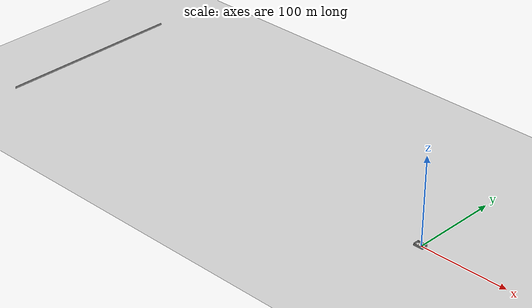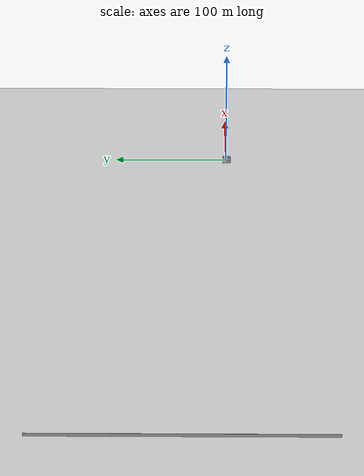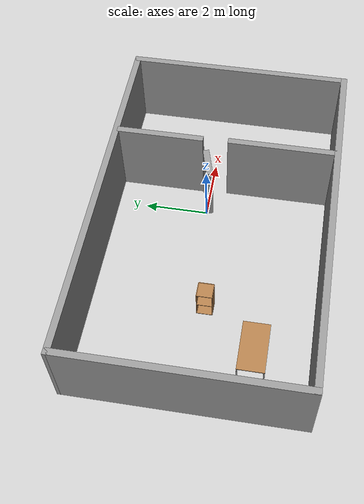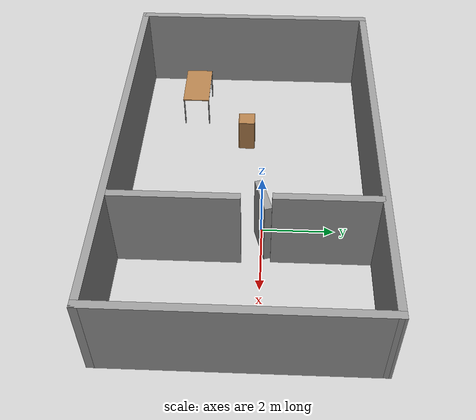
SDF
<sdf version="1.4">
 <world name="default">
  <light name="sun" type="directional">
   <pose>0 0 10 0 -0 0</pose>
   <diffuse>0.8 0.8 0.8 1</diffuse>
   <specular>0.2 0.2 0.2 1</specular>
   <attenuation>
    <range>1000</range>
    <constant>0.9</constant>
    <linear>0.01</linear>
    <quadratic>0.001</quadratic>
   </attenuation>
   <direction>-0.5 0.1 -0.9</direction>
  </light>
  <model name="ground_plane">
   <static>1</static>
   <link name="link">
    <collision name="collision">
     <geometry><plane><normal>0 0 1</normal><size>100 100</size></plane></geometry>
     <surface><friction><ode><mu>100</mu><mu2>50</mu2></ode></friction></surface>
    </collision>
    <visual name="visual">
     <cast_shadows>0</cast_shadows>
     <geometry><plane><normal>0 0 1</normal><size>100 100</size></plane></geometry>
     <material>
      <script><uri>file://media/materials/scripts/gazebo.material</uri><name>Gazebo/Grey</name></script>
     </material>
    </visual>
    <velocity_decay><linear>0</linear><angular>0</angular></velocity_decay>
   </link>
  </model>
  <physics type="ode">
   <max_step_size>0.001</max_step_size>
   <real_time_factor>1</real_time_factor>
   <real_time_update_rate>1000</real_time_update_rate>
   <gravity>0 0 -9.8</gravity>
  </physics>
  <scene><ambient>0.4 0.4 0.4 1</ambient><background>0.7 0.7 0.7 1</background><shadows>1</shadows></scene>
  <spherical_coordinates>
   <surface_model>EARTH_WGS84</surface_model>
   <latitude_deg>0</latitude_deg>
   <longitude_deg>0</longitude_deg>
   <elevation>0</elevation>
   <heading_deg>0</heading_deg>
  </spherical_coordinates>
  <model name="2room_0">
   <link name="Door_0">
    <collision name="Door_0_Collision">
     <geometry><box><size>1 0.2 2</size></box></geometry>
     <pose>0 0 1 0 -0 0</pose>
    </collision>
    <visual name="Door_0_Visual">
     <pose>0 0 1 0 -0 0</pose>
     <geometry><box><size>1 0.2 2</size></box></geometry>
     <material>
      <script><uri>file://media/materials/scripts/gazebo.material</uri><name>Gazebo/Grey</name></script>
     </material>
    </visual>
    <velocity_decay><linear>0</linear><angular>0</angular></velocity_decay>
    <pose>-4.49564 -7.96362 0 0 -0 0.286884</pose>
   </link>
   <link name="Wall_18">
    <collision name="Wall_18_Collision">
     <geometry><box><size>221.407 0.2 2.5</size></box></geometry>
     <pose>0 0 1.25 0 -0 0</pose>
    </collision>
    <visual name="Wall_18_Visual">
     <pose>0 0 1.25 0 -0 0</pose>
     <geometry><box><size>221.407 0.2 2.5</size></box></geometry>
     <material>
      <script><uri>file://media/materials/scripts/gazebo.material</uri><name>Gazebo/Grey</name></script>
     </material>
    </visual>
    <velocity_decay><linear>0</linear><angular>0</angular></velocity_decay>
    <pose>-524.193 27.5891 0 0 0 -1.5708</pose>
   </link>
   <link name="Wall_25">
    <collision name="Wall_25_Collision">
     <geometry><box><size>7.14004 0.2 2.5</size></box></geometry>
     <pose>0 0 1.25 0 -0 0</pose>
    </collision>
    <visual name="Wall_25_Visual">
     <pose>0 0 1.25 0 -0 0</pose>
     <geometry><box><size>7.14004 0.2 2.5</size></box></geometry>
     <material>
      <script><uri>file://media/materials/scripts/gazebo.material</uri><name>Gazebo/Grey</name></script>
     </material>
    </visual>
    <velocity_decay><linear>0</linear><angular>0</angular></velocity_decay>
    <pose>-11.793 -8.44542 0 0 0 -1.5708</pose>
   </link>
   <link name="Wall_26">
    <collision name="Wall_26_Collision">
     <geometry><box><size>11.2543 0.2 2.5</size></box></geometry>
     <pose>0 0 1.25 0 -0 0</pose>
    </collision>
    <visual name="Wall_26_Visual">
     <pose>0 0 1.25 0 -0 0</pose>
     <geometry><box><size>11.2543 0.2 2.5</size></box></geometry>
     <material>
      <script><uri>file://media/materials/scripts/gazebo.material</uri><name>Gazebo/Grey</name></script>
     </material>
    </visual>
    <velocity_decay><linear>0</linear><angular>0</angular></velocity_decay>
    <pose>-6.26584 -11.9154 0 0 -0 0</pose>
   </link>
   <link name="Wall_27">
    <collision name="Wall_27_Collision">
     <geometry><box><size>7.15086 0.2 2.5</size></box></geometry>
     <pose>0 0 1.25 0 -0 0</pose>
    </collision>
    <visual name="Wall_27_Visual">
     <pose>0 0 1.25 0 -0 0</pose>
     <geometry><box><size>7.15086 0.2 2.5</size></box></geometry>
     <material>
      <script><uri>file://media/materials/scripts/gazebo.material</uri><name>Gazebo/Grey</name></script>
     </material>
    </visual>
    <velocity_decay><linear>0</linear><angular>0</angular></velocity_decay>
    <pose>-0.73871 -8.44001 0 0 -0 1.5708</pose>
   </link>
   <link name="Wall_28">
    <collision name="Wall_28_Collision">
     <geometry><box><size>11.2543 0.2 2.5</size></box></geometry>
     <pose>0 0 1.25 0 -0 0</pose>
    </collision>
    <visual name="Wall_28_Visual">
     <pose>0 0 1.25 0 -0 0</pose>
     <geometry><box><size>11.2543 0.2 2.5</size></box></geometry>
     <material>
      <script><uri>file://media/materials/scripts/gazebo.material</uri><name>Gazebo/Grey</name></script>
     </material>
    </visual>
    <velocity_decay><linear>0</linear><angular>0</angular></velocity_decay>
    <pose>-6.26584 -4.96999 0 0 0 -3.14061</pose>
   </link>
   <link name="Wall_30">
    <collision name="Wall_30_Collision">
     <geometry><box><size>2.73349 0.2 2.5</size></box></geometry>
     <pose>0 0 1.25 0 -0 0</pose>
    </collision>
    <visual name="Wall_30_Visual">
     <pose>0 0 1.25 0 -0 0</pose>
     <geometry><box><size>2.73349 0.2 2.5</size></box></geometry>
     <material>
      <script><uri>file://media/materials/scripts/gazebo.material</uri><name>Gazebo/Grey</name></script>
     </material>
    </visual>
    <velocity_decay><linear>0</linear><angular>0</angular></velocity_decay>
    <pose>-3.9976 -6.37207 0 0 0 -1.5708</pose>
   </link>
   <link name="Wall_32">
    <collision name="Wall_32_Collision">
     <geometry><box><size>3.36145 0.2 2.5</size></box></geometry>
     <pose>0 0 1.25 0 -0 0</pose>
    </collision>
    <visual name="Wall_32_Visual">
     <pose>0 0 1.25 0 -0 0</pose>
     <geometry><box><size>3.36145 0.2 2.5</size></box></geometry>
     <material>
      <script><uri>file://media/materials/scripts/gazebo.material</uri><name>Gazebo/Grey</name></script>
     </material>
    </visual>
    <velocity_decay><linear>0</linear><angular>0</angular></velocity_decay>
    <pose>-3.9543 -10.194 0 0 0 -1.5708</pose>
   </link>
   <static>1</static>
   <pose>5 8 0 0 -0 0</pose>
  </model>
  <model name="table">
   <static>1</static>
   <link name="link">
    <collision name="surface">
     <pose>0 0 1 0 -0 0</pose>
     <geometry><box><size>1.5 0.8 0.03</size></box></geometry>
     <surface><friction><ode><mu>0.6</mu><mu2>0.6</mu2></ode></friction></surface>
    </collision>
    <visual name="visual1">
     <pose>0 0 1 0 -0 0</pose>
     <geometry><box><size>1.5 0.8 0.03</size></box></geometry>
     <material>
      <script><uri>file://media/materials/scripts/gazebo.material</uri><name>Gazebo/Wood</name></script>
     </material>
    </visual>
    <collision name="front_left_leg">
     <pose>0.68 0.38 0.5 0 -0 0</pose>
     <geometry><cylinder><radius>0.02</radius><length>1</length></cylinder></geometry>
    </collision>
    <visual name="front_left_leg">
     <pose>0.68 0.38 0.5 0 -0 0</pose>
     <geometry><cylinder><radius>0.02</radius><length>1</length></cylinder></geometry>
     <material>
      <script><uri>file://media/materials/scripts/gazebo.material</uri><name>Gazebo/Grey</name></script>
     </material>
    </visual>
    <collision name="front_right_leg">
     <pose>0.68 -0.38 0.5 0 -0 0</pose>
     <geometry><cylinder><radius>0.02</radius><length>1</length></cylinder></geometry>
    </collision>
    <visual name="front_right_leg">
     <pose>0.68 -0.38 0.5 0 -0 0</pose>
     <geometry><cylinder><radius>0.02</radius><length>1</length></cylinder></geometry>
     <material>
      <script><uri>file://media/materials/scripts/gazebo.material</uri><name>Gazebo/Grey</name></script>
     </material>
    </visual>
    <collision name="back_right_leg">
     <pose>-0.68 -0.38 0.5 0 -0 0</pose>
     <geometry><cylinder><radius>0.02</radius><length>1</length></cylinder></geometry>
    </collision>
    <visual name="back_right_leg">
     <pose>-0.68 -0.38 0.5 0 -0 0</pose>
     <geometry><cylinder><radius>0.02</radius><length>1</length></cylinder></geometry>
     <material>
      <script><uri>file://media/materials/scripts/gazebo.material</uri><name>Gazebo/Grey</name></script>
     </material>
    </visual>
    <collision name="back_left_leg">
     <pose>-0.68 0.38 0.5 0 -0 0</pose>
     <geometry><cylinder><radius>0.02</radius><length>1</length></cylinder></geometry>
    </collision>
    <visual name="back_left_leg">
     <pose>-0.68 0.38 0.5 0 -0 0</pose>
     <geometry><cylinder><radius>0.02</radius><length>1</length></cylinder></geometry>
     <material>
      <script><uri>file://media/materials/scripts/gazebo.material</uri><name>Gazebo/Grey</name></script>
     </material>
    </visual>
    <velocity_decay><linear>0</linear><angular>0</angular></velocity_decay>
   </link>
   <pose>-5.08672 -2.15883 0 0 -0 0</pose>
  </model>
  <model name="cabinet">
   <static>1</static>
   <link name="cabinet_bottom_plate">
    <inertial>
     <pose>0 0 -1 0 -0 0</pose>
     <inertia><ixx>2.05</ixx><ixy>0</ixy><ixz>0</ixz><iyy>2.05</iyy><iyz>0</iyz><izz>2.05</izz></inertia>
     <mass>25</mass>
    </inertial>
    <collision name="cabinet_bottom_plate_geom">
     <pose>0 0 0.01 0 -0 0</pose>
     <geometry><box><size>0.45 0.45 0.02</size></box></geometry>
    </collision>
    <visual name="cabinet_bottom_plate_geom_visual">
     <pose>0 0 0.01 0 -0 0</pose>
     <geometry><box><size>0.45 0.45 0.02</size></box></geometry>
     <material>
      <script><uri>file://media/materials/scripts/gazebo.material</uri><name>Gazebo/Wood</name></script>
     </material>
    </visual>
    <collision name="cabinet_bottom_plate_geom_cabinet_back_plate">
     <pose>0.235 0 0.51 0 -0 0</pose>
     <geometry><box><size>0.02 0.45 1.02</size></box></geometry>
    </collision>
    <visual name="cabinet_bottom_plate_geom_cabinet_back_plate_visual">
     <pose>0.235 0 0.51 0 -0 0</pose>
     <geometry><box><size>0.02 0.45 1.02</size></box></geometry>
     <material>
      <script><uri>file://media/materials/scripts/gazebo.material</uri><name>Gazebo/Wood</name></script>
     </material>
    </visual>
    <collision name="cabinet_bottom_plate_geom_cabinet_left_plate">
     <pose>0 0.235 0.51 0 -0 0</pose>
     <geometry><box><size>0.45 0.02 1.02</size></box></geometry>
    </collision>
    <visual name="cabinet_bottom_plate_geom_cabinet_left_plate_visual">
     <pose>0 0.235 0.51 0 -0 0</pose>
     <geometry><box><size>0.45 0.02 1.02</size></box></geometry>
     <material>
      <script><uri>file://media/materials/scripts/gazebo.material</uri><name>Gazebo/Wood</name></script>
     </material>
    </visual>
    <collision name="cabinet_bottom_plate_geom_cabinet_middle_plate">
     <pose>0 0 0.51 0 -0 0</pose>
     <geometry><box><size>0.45 0.45 0.02</size></box></geometry>
    </collision>
    <visual name="cabinet_bottom_plate_geom_cabinet_middle_plate_visual">
     <pose>0 0 0.51 0 -0 0</pose>
     <geometry><box><size>0.45 0.45 0.02</size></box></geometry>
     <material>
      <script><uri>file://media/materials/scripts/gazebo.material</uri><name>Gazebo/Wood</name></script>
     </material>
    </visual>
    <collision name="cabinet_bottom_plate_geom_cabinet_right_plate">
     <pose>0 -0.235 0.51 0 -0 0</pose>
     <geometry><box><size>0.45 0.02 1.02</size></box></geometry>
    </collision>
    <visual name="cabinet_bottom_plate_geom_cabinet_right_plate_visual">
     <pose>0 -0.235 0.51 0 -0 0</pose>
     <geometry><box><size>0.45 0.02 1.02</size></box></geometry>
     <material>
      <script><uri>file://media/materials/scripts/gazebo.material</uri><name>Gazebo/Wood</name></script>
     </material>
    </visual>
    <collision name="cabinet_bottom_plate_geom_cabinet_top_plate">
     <pose>0 0 1.01 0 -0 0</pose>
     <geometry><box><size>0.45 0.45 0.02</size></box></geometry>
    </collision>
    <visual name="cabinet_bottom_plate_geom_cabinet_top_plate_visual">
     <pose>0 0 1.01 0 -0 0</pose>
     <geometry><box><size>0.45 0.45 0.02</size></box></geometry>
     <material>
      <script><uri>file://media/materials/scripts/gazebo.material</uri><name>Gazebo/Wood</name></script>
     </material>
    </visual>
    <velocity_decay><linear>0</linear><angular>0</angular></velocity_decay>
   </link>
   <pose>-3.51718 -0.536307 0 0 -0 0</pose>
  </model>
 </world>
</sdf>
